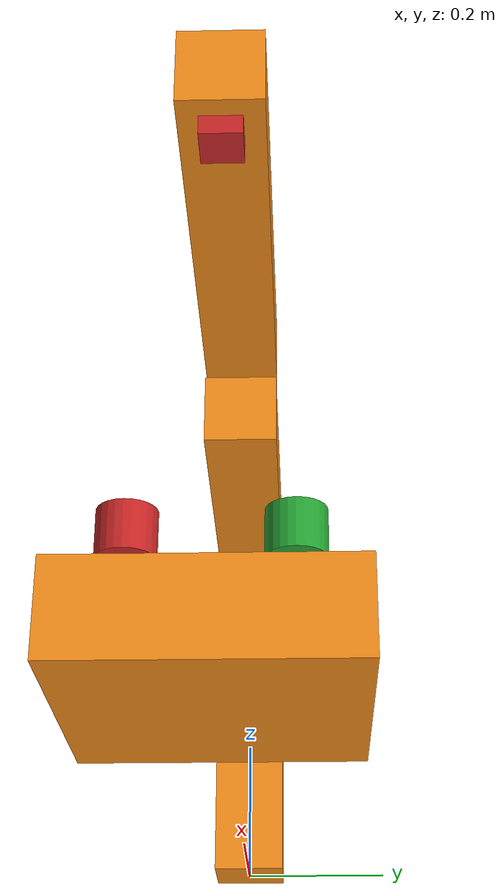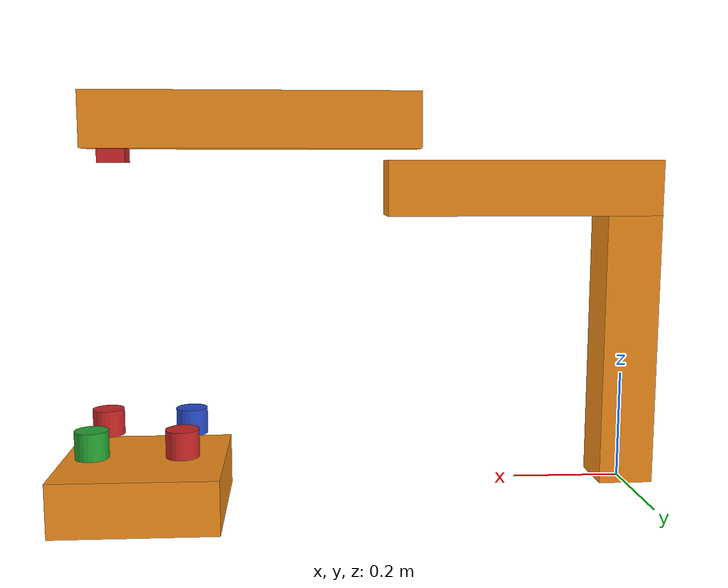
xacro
<?xml version="1.0"?>
<!-- Revolute-Revolute Manipulator -->
<robot name="vbmbot" xmlns:xacro="http://www.ros.org/wiki/xacro">

  <!-- Constants for robot dimensions -->
  <xacro:property name="PI" value="3.1415926535897931"/>
  <xacro:property name="mass" value="1" /> <!-- arbitrary value for mass -->
  <xacro:property name="width" value="0.1" /> <!-- Square dimensions (widthxwidth) of beams -->
  <xacro:property name="height1" value="0.5" /> <!-- Link 1 -->
  <xacro:property name="height2" value="0.5" /> <!-- Link 2 -->
  <xacro:property name="height3" value="0.5" /> <!-- Link 3 -->
  <xacro:property name="camera_link" value="0.05" /> <!-- Size of square 'camera' box -->
  <xacro:property name="axel_offset" value="0.05" /> <!-- Space btw top of beam and the each joint -->
  <xacro:macro name="default_inertial" params="mass">
    <inertial>
      <mass value="${mass}" />
      <inertia ixx="0.0" ixy="0.0" ixz="0.0" iyy="0.0" iyz="0.0" izz="0.0" />
    </inertial>
  </xacro:macro>
  <!-- Import all Gazebo-customization elements, including Gazebo colors -->
  <xacro:include filename="$(find vision_based_manipulation)/urdf/vbmbot.gazebo" />
  <!-- Import Rviz colors -->
  <xacro:include filename="$(find vision_based_manipulation)/urdf/materials.xacro" />

   <!-- Used for fixing the flatboard to Gazebo 'base_link' -->

  <!-- Used for fixing robot to Gazebo 'base_link' -->
  <link name="world"/>

  <joint name="joint0" type="fixed">
    <parent link="world"/>
    <child link="link1"/>
  </joint>

  <link name="obj_square">
    <visual>
      <geometry>
        <box size = "0.3 0.3 0.1"/>
      </geometry>

      <material name="orange"/>
    </visual>
    <collision>
      <geometry>
        <box size = "0 0 0.1"/>
      </geometry>
    </collision>
    <xacro:default_inertial mass="1"/>
  </link>

  <link name="obj_circle1">
  <visual>
    <geometry>
      <cylinder length = '0.05' radius = '0.03'/>
    </geometry>
    <material name="red"/>
  </visual>
  <collision>
    <geometry>
      <cylinder length = '0.05' radius = '0.03'/>
    </geometry>
  </collision>
  <xacro:default_inertial mass="0.1"/>
  </link>

  <link name="obj_circle2">
  <visual>
    <geometry>
      <cylinder length = '0.05' radius = '0.03'/>
    </geometry>

    <material name="blue"/>
  </visual>
  <collision>
    <geometry>
      <cylinder length = '0.05' radius = '0.03'/>
    </geometry>
  </collision>
  <xacro:default_inertial mass="0.1"/>
  </link>

  <link name="obj_circle3">
    <visual>
      <geometry>
        <cylinder length = '0.05' radius = '0.03'/>
      </geometry>

      <material name="green"/>
    </visual>
    <collision>
      <geometry>
        <cylinder length = '0.05' radius = '0.03'/>
      </geometry>
    </collision>
    <xacro:default_inertial mass="0.1"/>
  </link>

  <link name="obj_circle4">
    <visual>
      <geometry>
        <cylinder length = '0.05' radius = '0.03'/>
      </geometry>

      <material name="red"/>
    </visual>
    <collision>
      <geometry>
        <cylinder length = '0.05' radius = '0.03'/>
      </geometry>
    </collision>
    <xacro:default_inertial mass="0.1"/>
  </link>

  <joint name="base_to_obj" type="fixed">
    <parent link="world"/>
    <child link="obj_square"/>
    <origin xyz="0.9 0 0" />
  </joint>

  <joint name="obj_to_c1" type="fixed">
    <parent link="obj_square"/>
    <child link="obj_circle1"/>
    <origin xyz="-0.08 0.08 0.1" />
  </joint>

  <joint name="obj_to_c2" type="fixed">
    <parent link="obj_square"/>
    <child link="obj_circle2"/>
    <origin xyz="-0.08 -0.08 0.1" />
  </joint>

  <joint name="obj_to_c3" type="fixed">
    <parent link="obj_square"/>
    <child link="obj_circle3"/>
    <origin xyz="0.08 0.08 0.1" />
  </joint>

  <joint name="obj_to_c4" type="fixed">
    <parent link="obj_square"/>
    <child link="obj_circle4"/>
    <origin xyz="0.08 -0.08 0.1" />
  </joint>

  <!-- Base Link -->
  <link name="link1">
    <collision>
      <origin xyz="0 0 ${height1/2}" rpy="0 0 0"/>
      <geometry>
	<box size="${width} ${width} ${height1}"/>
      </geometry>
    </collision>

    <visual>
      <origin xyz="0 0 ${height1/2}" rpy="0 0 0"/>
      <geometry>
	<box size="${width} ${width} ${height1}"/>
      </geometry>
      <material name="orange"/>
    </visual>

    <inertial>
      <origin xyz="0 0 ${height1/2}" rpy="0 0 0"/>
      <mass value="${mass}"/>
      <inertia
	  ixx="${mass / 12.0 * (width*width + height1*height1)}" ixy="0.0" ixz="0.0"
	  iyy="${mass / 12.0 * (height1*height1 + width*width)}" iyz="0.0"
	  izz="${mass / 12.0 * (width*width + width*width)}"/>
    </inertial>
  </link>

  <joint name="joint1" type="continuous">
    <parent link="link1"/>
    <child link="link2"/>
    <origin xyz="0 0 ${height1 + axel_offset}" rpy="0 1.5708 0"/>
    <axis xyz="1 0 0"/>
    <dynamics damping="0.7"/>
  </joint>

  <!-- Middle Link -->
  <link name="link2">
    <collision>
      <origin xyz="0 0 ${height2/2 - axel_offset}" rpy="0 0 0"/>
      <geometry>
	<box size="${width} ${width} ${height2}"/>
      </geometry>
    </collision>

    <visual>
      <origin xyz="0 0 ${height2/2 - axel_offset}" rpy="0 0 0"/>
      <geometry>
	<box size="${width} ${width} ${height2}"/>
      </geometry>
      <material name="orange"/>
    </visual>

    <inertial>
      <origin xyz="0 0 ${height2/2 - axel_offset}" rpy="0 0 0"/>
      <mass value="${mass}"/>
      <inertia
	  ixx="${mass / 12.0 * (width*width + height2*height2)}" ixy="0.0" ixz="0.0"
	  iyy="${mass / 12.0 * (height2*height2 + width*width)}" iyz="0.0"
	  izz="${mass / 12.0 * (width*width + width*width)}"/>
    </inertial>
  </link>

  <joint name="joint2" type="continuous">
    <parent link="link2"/>
    <child link="link3"/>
    <origin xyz="-${width+0.02} 0 ${height2 - 0.01}" rpy="0 0 0"/>
    <axis xyz="1 0 0"/>
    <dynamics damping="0.7"/>
  </joint>

  <link name="link3">
    <collision>
      <origin xyz="0 0 ${height3/2 - axel_offset}" rpy="0 0 0"/>
      <geometry>
	<box size="${width} ${width} ${height3}"/>
      </geometry>
    </collision>

    <visual>
      <origin xyz="0 0 ${height3/2 - axel_offset}" rpy="0 0 0"/>
      <geometry>
	<box size="${width} ${width} 0.6"/>
      </geometry>
      <material name="orange"/>
    </visual>

    <inertial>
      <origin xyz="0 0 ${height3/2 - axel_offset}" rpy="0 0 0"/>
      <mass value="${mass}"/>
      <inertia
	  ixx="${mass / 12.0 * (width*width + height3*height3)}" ixy="0.0" ixz="0.0"
	  iyy="${mass / 12.0 * (height3*height3 + width*width)}" iyz="0.0"
	  izz="${mass / 12.0 * (width*width + width*width)}"/>
    </inertial>
  </link>

  <joint name="camera_joint" type="fixed">
    <origin xyz="${camera_link} 0 ${height3 - axel_offset}" rpy="0 0 0 "/>
    <parent link="link3"/>
    <child link="camera_link"/>
  </joint>

  <!-- Camera -->
  <link name="camera_link">
    <collision>
      <origin xyz="0 0 0" rpy="0 0 0"/>
      <geometry>
	<box size="${camera_link} ${camera_link} ${camera_link}"/>
      </geometry>
    </collision>

    <visual>
      <origin xyz="0 0 0" rpy="0 0 0"/>
      <geometry>
	<box size="${camera_link} ${camera_link} ${camera_link}"/>
      </geometry>
      <material name="red"/>
    </visual>

    <inertial>
      <mass value="1e-5" />
      <origin xyz="0 0 0" rpy="0 0 0"/>
      <inertia ixx="1e-6" ixy="0" ixz="0" iyy="1e-6" iyz="0" izz="1e-6" />
    </inertial>
  </link>

  <!-- generate an optical frame http://www.ros.org/reps/rep-0103.html#suffix-frames
      so that ros and opencv can operate on the camera frame correctly -->
  <joint name="camera_optical_joint" type="fixed">
    <!-- these values have to be these values otherwise the gazebo camera image
        won't be aligned properly with the frame it is supposedly originating from -->
    <origin xyz="0 0 0" rpy="${-pi/2} 0 ${-pi/2}"/> #${-pi/2} 0 ${-pi/2}
    <parent link="camera_link"/>
    <child link="camera_link_optical"/>
  </joint>

  <link name="camera_link_optical">
  </link>

  <transmission name="tran1">
    <type>transmission_interface/SimpleTransmission</type>
    <joint name="joint1">
      <hardwareInterface>hardware_interface/VelocityJointInterface</hardwareInterface>
    </joint>
    <actuator name="motor1">
      <hardwareInterface>hardware_interface/VelocityJointInterface</hardwareInterface>
      <mechanicalReduction>1</mechanicalReduction>
    </actuator>
  </transmission>

  <transmission name="tran2">
    <type>transmission_interface/SimpleTransmission</type>
    <joint name="joint2">
      <hardwareInterface>hardware_interface/VelocityJointInterface</hardwareInterface>
    </joint>
    <actuator name="motor2">
      <hardwareInterface>hardware_interface/VelocityJointInterface</hardwareInterface>
      <mechanicalReduction>1</mechanicalReduction>
    </actuator>
  </transmission>

</robot>
